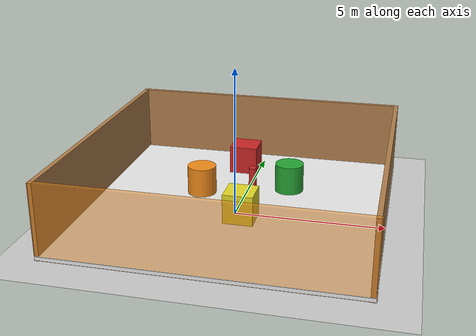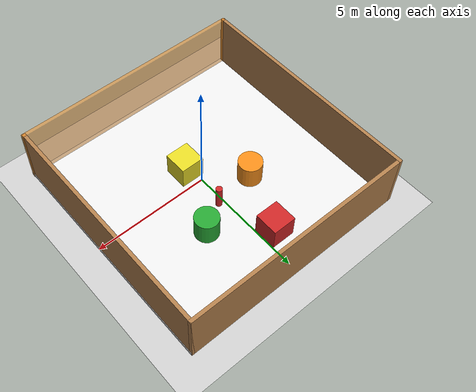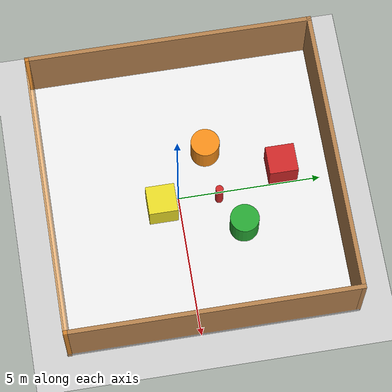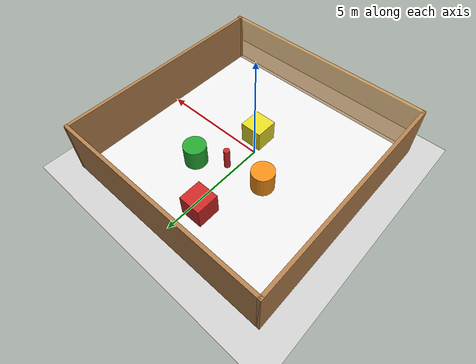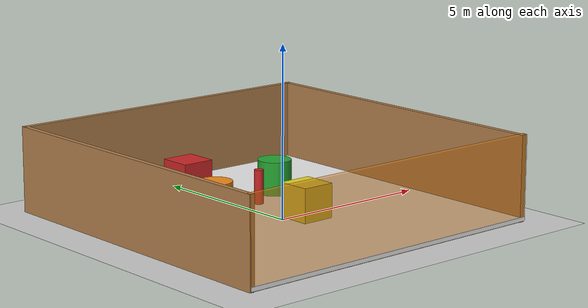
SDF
<sdf version="1.7">
 <world name="default">
  <light name="sun" type="directional">
   <pose>0 0 10 0 -0 0</pose>
   <diffuse>0.8 0.8 0.8 1</diffuse>
   <specular>0.2 0.2 0.2 1</specular>
   <attenuation>
    <range>1000</range>
    <constant>0.9</constant>
    <linear>0.01</linear>
    <quadratic>0.001</quadratic>
   </attenuation>
   <direction>-0.5 0.1 -0.9</direction>
   <spot><inner_angle>0</inner_angle><outer_angle>0</outer_angle><falloff>0</falloff></spot>
  </light>
  <model name="ground_plane">
   <static>1</static>
   <link name="link">
    <collision name="collision">
     <geometry><plane><normal>0 0 1</normal><size>100 100</size></plane></geometry>
     <surface>
      <contact><collide_bitmask>65535</collide_bitmask></contact>
      <friction><ode><mu>100</mu><mu2>50</mu2></ode></friction>
     </surface>
    </collision>
    <visual name="visual">
     <cast_shadows>0</cast_shadows>
     <geometry><plane><normal>0 0 1</normal><size>100 100</size></plane></geometry>
     <material>
      <script><uri>file://media/materials/scripts/gazebo.material</uri><name>Gazebo/Grey</name></script>
     </material>
    </visual>
   </link>
  </model>
  <gravity>0 0 -9.8</gravity>
  <magnetic_field>6e-06 2.3e-05 -4.2e-05</magnetic_field>
  <atmosphere type="adiabatic"/>
  <physics type="ode">
   <max_step_size>0.001</max_step_size>
   <real_time_factor>1</real_time_factor>
   <real_time_update_rate>1000</real_time_update_rate>
  </physics>
  <scene><ambient>0.4 0.4 0.4 1</ambient><background>0.7 0.7 0.7 1</background><shadows>1</shadows></scene>
  <spherical_coordinates>
   <surface_model>EARTH_WGS84</surface_model>
   <latitude_deg>0</latitude_deg>
   <longitude_deg>0</longitude_deg>
   <elevation>0</elevation>
   <heading_deg>0</heading_deg>
  </spherical_coordinates>
  <model name="delimiter_transparent">
   <model name="delimiter">
    <link name="Wall_11">
     <pose>0 4.925 0 0 -0 0</pose>
     <visual name="Wall_11_Visual">
      <pose>0 0 1.25 0 -0 0</pose>
      <geometry><box><size>10 0.15 2.5</size></box></geometry>
      <material>
       <script><uri>file://media/materials/scripts/gazebo.material</uri><name>Gazebo/Wood</name></script>
       <ambient>1 1 1 1</ambient>
       <shader type="pixel"/>
       <emissive>0 0 0 1</emissive>
      </material>
      <meta><layer>0</layer></meta>
     </visual>
     <collision name="Wall_11_Collision">
      <pose>0 0 1.25 0 -0 0</pose>
      <geometry><box><size>10 0.15 2.5</size></box></geometry>
      <surface>
       <friction>
        <ode><mu>1</mu><mu2>1</mu2><fdir1>0 0 0</fdir1><slip1>0</slip1><slip2>0</slip2></ode>
        <torsional>
         <coefficient>1</coefficient>
         <patch_radius>0</patch_radius>
         <surface_radius>0</surface_radius>
         <use_patch_radius>1</use_patch_radius>
         <ode><slip>0</slip></ode>
        </torsional>
       </friction>
       <bounce><restitution_coefficient>0</restitution_coefficient><threshold>1e+06</threshold></bounce>
       <contact>
        <collide_without_contact>0</collide_without_contact>
        <collide_without_contact_bitmask>1</collide_without_contact_bitmask>
        <collide_bitmask>1</collide_bitmask>
        <ode>
         <soft_cfm>0</soft_cfm>
         <soft_erp>0.2</soft_erp>
         <kp>1e+13</kp>
         <kd>1</kd>
         <max_vel>0.01</max_vel>
         <min_depth>0</min_depth>
        </ode>
        <bullet>
         <split_impulse>1</split_impulse>
         <split_impulse_penetration_threshold>-0.01</split_impulse_penetration_threshold>
         <soft_cfm>0</soft_cfm>
         <soft_erp>0.2</soft_erp>
         <kp>1e+13</kp>
         <kd>1</kd>
        </bullet>
       </contact>
      </surface>
     </collision>
    </link>
    <link name="Wall_6">
     <pose>-4.925 0 0 0 -0 1.5708</pose>
     <visual name="Wall_6_Visual">
      <pose>0 0 1.25 0 -0 0</pose>
      <geometry><box><size>10 0.15 2.5</size></box></geometry>
      <material>
       <script><uri>file://media/materials/scripts/gazebo.material</uri><name>Gazebo/Wood</name></script>
       <ambient>1 1 1 1</ambient>
       <shader type="pixel"/>
       <emissive>0 0 0 1</emissive>
      </material>
      <meta><layer>0</layer></meta>
     </visual>
     <collision name="Wall_6_Collision">
      <pose>0 0 1.25 0 -0 0</pose>
      <geometry><box><size>10 0.15 2.5</size></box></geometry>
      <surface>
       <friction>
        <ode><mu>1</mu><mu2>1</mu2><fdir1>0 0 0</fdir1><slip1>0</slip1><slip2>0</slip2></ode>
        <torsional>
         <coefficient>1</coefficient>
         <patch_radius>0</patch_radius>
         <surface_radius>0</surface_radius>
         <use_patch_radius>1</use_patch_radius>
         <ode><slip>0</slip></ode>
        </torsional>
       </friction>
       <bounce><restitution_coefficient>0</restitution_coefficient><threshold>1e+06</threshold></bounce>
       <contact>
        <collide_without_contact>0</collide_without_contact>
        <collide_without_contact_bitmask>1</collide_without_contact_bitmask>
        <collide_bitmask>1</collide_bitmask>
        <ode>
         <soft_cfm>0</soft_cfm>
         <soft_erp>0.2</soft_erp>
         <kp>1e+13</kp>
         <kd>1</kd>
         <max_vel>0.01</max_vel>
         <min_depth>0</min_depth>
        </ode>
        <bullet>
         <split_impulse>1</split_impulse>
         <split_impulse_penetration_threshold>-0.01</split_impulse_penetration_threshold>
         <soft_cfm>0</soft_cfm>
         <soft_erp>0.2</soft_erp>
         <kp>1e+13</kp>
         <kd>1</kd>
        </bullet>
       </contact>
      </surface>
     </collision>
    </link>
    <link name="Wall_9">
     <pose>4.925 0 0 0 -0 1.5708</pose>
     <visual name="Wall_9_Visual">
      <pose>0 0 1.25 0 -0 0</pose>
      <geometry><box><size>10 0.15 2.5</size></box></geometry>
      <material>
       <script><uri>file://media/materials/scripts/gazebo.material</uri><name>Gazebo/Wood</name></script>
       <ambient>1 1 1 1</ambient>
       <shader type="pixel"/>
       <emissive>0 0 0 1</emissive>
      </material>
      <meta><layer>0</layer></meta>
     </visual>
     <collision name="Wall_9_Collision">
      <pose>0 0 1.25 0 -0 0</pose>
      <geometry><box><size>10 0.15 2.5</size></box></geometry>
      <surface>
       <friction>
        <ode><mu>1</mu><mu2>1</mu2><fdir1>0 0 0</fdir1><slip1>0</slip1><slip2>0</slip2></ode>
        <torsional>
         <coefficient>1</coefficient>
         <patch_radius>0</patch_radius>
         <surface_radius>0</surface_radius>
         <use_patch_radius>1</use_patch_radius>
         <ode><slip>0</slip></ode>
        </torsional>
       </friction>
       <bounce><restitution_coefficient>0</restitution_coefficient><threshold>1e+06</threshold></bounce>
       <contact>
        <collide_without_contact>0</collide_without_contact>
        <collide_without_contact_bitmask>1</collide_without_contact_bitmask>
        <collide_bitmask>1</collide_bitmask>
        <ode>
         <soft_cfm>0</soft_cfm>
         <soft_erp>0.2</soft_erp>
         <kp>1e+13</kp>
         <kd>1</kd>
         <max_vel>0.01</max_vel>
         <min_depth>0</min_depth>
        </ode>
        <bullet>
         <split_impulse>1</split_impulse>
         <split_impulse_penetration_threshold>-0.01</split_impulse_penetration_threshold>
         <soft_cfm>0</soft_cfm>
         <soft_erp>0.2</soft_erp>
         <kp>1e+13</kp>
         <kd>1</kd>
        </bullet>
       </contact>
      </surface>
     </collision>
    </link>
    <link name="link_0">
     <inertial>
      <mass>0.118338</mass>
      <inertia><ixx>0.986289</ixx><ixy>0</ixy><ixz>0</ixz><iyy>0.986289</iyy><iyz>0</iyz><izz>1.9723</izz></inertia>
     </inertial>
     <pose>0.016005 -0.024248 0.089599 0 -0 0</pose>
     <visual name="visual">
      <geometry><box><size>10 10 0.118336</size></box></geometry>
      <material>
       <script><uri>file://media/materials/scripts/gazebo.material</uri><name>Gazebo/White</name></script>
       <ambient>1 1 1 1</ambient>
       <shader type="pixel"/>
       <emissive>0 0 0 1</emissive>
      </material>
     </visual>
     <collision name="collision">
      <geometry><box><size>10 10 0.118336</size></box></geometry>
      <surface>
       <friction>
        <ode><mu>1</mu><mu2>1</mu2><fdir1>0 0 0</fdir1><slip1>0</slip1><slip2>0</slip2></ode>
        <torsional>
         <coefficient>1</coefficient>
         <patch_radius>0</patch_radius>
         <surface_radius>0</surface_radius>
         <use_patch_radius>1</use_patch_radius>
         <ode><slip>0</slip></ode>
        </torsional>
       </friction>
       <bounce><restitution_coefficient>0</restitution_coefficient><threshold>1e+06</threshold></bounce>
       <contact>
        <collide_without_contact>0</collide_without_contact>
        <collide_without_contact_bitmask>1</collide_without_contact_bitmask>
        <collide_bitmask>1</collide_bitmask>
        <ode>
         <soft_cfm>0</soft_cfm>
         <soft_erp>0.2</soft_erp>
         <kp>1e+13</kp>
         <kd>1</kd>
         <max_vel>0.01</max_vel>
         <min_depth>0</min_depth>
        </ode>
        <bullet>
         <split_impulse>1</split_impulse>
         <split_impulse_penetration_threshold>-0.01</split_impulse_penetration_threshold>
         <soft_cfm>0</soft_cfm>
         <soft_erp>0.2</soft_erp>
         <kp>1e+13</kp>
         <kd>1</kd>
        </bullet>
       </contact>
      </surface>
     </collision>
    </link>
    <joint name="link_0_JOINT_2" type="fixed">
     <parent>link_0</parent>
     <child>Wall_6</child>
     <physics>
      <ode><limit><cfm>0</cfm><erp>0.2</erp></limit><suspension><cfm>0</cfm><erp>0.2</erp></suspension></ode>
     </physics>
    </joint>
    <joint name="link_0_JOINT_3" type="fixed">
     <parent>link_0</parent>
     <child>Wall_11</child>
     <physics>
      <ode><limit><cfm>0</cfm><erp>0.2</erp></limit><suspension><cfm>0</cfm><erp>0.2</erp></suspension></ode>
     </physics>
    </joint>
    <joint name="link_0_JOINT_4" type="fixed">
     <parent>link_0</parent>
     <child>Wall_9</child>
     <physics>
      <ode><limit><cfm>0</cfm><erp>0.2</erp></limit><suspension><cfm>0</cfm><erp>0.2</erp></suspension></ode>
     </physics>
    </joint>
    <static>1</static>
    <pose>0.081139 2.3494 0 0 -0 0</pose>
   </model>
   <model name="wall">
    <link name="link_0">
     <inertial>
      <mass>1</mass>
      <inertia>
       <ixx>0.166667</ixx>
       <ixy>0</ixy>
       <ixz>0</ixz>
       <iyy>0.166667</iyy>
       <iyz>0</iyz>
       <izz>0.166667</izz>
      </inertia>
     </inertial>
     <visual name="visual">
      <geometry><box><size>10 0.15 2.5</size></box></geometry>
      <material>
       <lighting>1</lighting>
       <script>
        <uri>file://media/materials/scripts/gazebo.material</uri>
        <name>Gazebo/OrangeTransparent</name>
       </script>
       <shader type="pixel"><normal_map>__default__</normal_map></shader>
      </material>
     </visual>
     <collision name="collision">
      <geometry><box><size>10 0.15 2.5</size></box></geometry>
      <surface>
       <friction>
        <ode><mu>1</mu><mu2>1</mu2><fdir1>0 0 0</fdir1><slip1>0</slip1><slip2>0</slip2></ode>
        <torsional>
         <coefficient>1</coefficient>
         <patch_radius>0</patch_radius>
         <surface_radius>0</surface_radius>
         <use_patch_radius>1</use_patch_radius>
         <ode><slip>0</slip></ode>
        </torsional>
       </friction>
       <bounce><restitution_coefficient>0</restitution_coefficient><threshold>1e+06</threshold></bounce>
       <contact>
        <collide_without_contact>0</collide_without_contact>
        <collide_without_contact_bitmask>1</collide_without_contact_bitmask>
        <collide_bitmask>1</collide_bitmask>
        <ode>
         <soft_cfm>0</soft_cfm>
         <soft_erp>0.2</soft_erp>
         <kp>1e+13</kp>
         <kd>1</kd>
         <max_vel>0.01</max_vel>
         <min_depth>0</min_depth>
        </ode>
        <bullet>
         <split_impulse>1</split_impulse>
         <split_impulse_penetration_threshold>-0.01</split_impulse_penetration_threshold>
         <soft_cfm>0</soft_cfm>
         <soft_erp>0.2</soft_erp>
         <kp>1e+13</kp>
         <kd>1</kd>
        </bullet>
       </contact>
      </surface>
     </collision>
    </link>
    <static>1</static>
    <pose>0.11227 -2.58314 1.26203 0 -0 0</pose>
   </model>
   <joint name="link_0_JOINT_1" type="fixed">
    <parent>delimiter::link_0</parent>
    <child>delimiter::Wall_11</child>
    <physics>
     <ode><limit><cfm>0</cfm><erp>0.2</erp></limit><suspension><cfm>0</cfm><erp>0.2</erp></suspension></ode>
    </physics>
   </joint>
   <joint name="link_0_JOINT_2" type="fixed">
    <parent>delimiter::link_0</parent>
    <child>delimiter::Wall_9</child>
    <physics>
     <ode><limit><cfm>0</cfm><erp>0.2</erp></limit><suspension><cfm>0</cfm><erp>0.2</erp></suspension></ode>
    </physics>
   </joint>
   <joint name="link_0_JOINT_0" type="fixed">
    <parent>wall::link_0</parent>
    <child>delimiter::link_0</child>
    <physics>
     <ode><limit><cfm>0</cfm><erp>0.2</erp></limit><suspension><cfm>0</cfm><erp>0.2</erp></suspension></ode>
    </physics>
   </joint>
   <joint name="link_0_JOINT_0" type="fixed">
    <parent>wall::link_0</parent>
    <child>delimiter::Wall_6</child>
    <physics>
     <ode><limit><cfm>0</cfm><erp>0.2</erp></limit><suspension><cfm>0</cfm><erp>0.2</erp></suspension></ode>
    </physics>
   </joint>
   <static>0</static>
   <pose>-0.096347 -1.89297 0 0 -0 0</pose>
  </model>
  <model name="obstacle_series_straight">
   <link name="link_0">
    <inertial>
     <mass>1</mass>
     <inertia>
      <ixx>0.166667</ixx>
      <ixy>0</ixy>
      <ixz>0</ixz>
      <iyy>0.166667</iyy>
      <iyz>0</iyz>
      <izz>0.166667</izz>
     </inertia>
    </inertial>
    <pose>0.371127 -2.10804 -0 0 -0 0</pose>
    <visual name="visual">
     <geometry><box><size>1 1 1</size></box></geometry>
     <material>
      <lighting>1</lighting>
      <script><uri>file://media/materials/scripts/gazebo.material</uri><name>Gazebo/Yellow</name></script>
      <shader type="pixel"/>
     </material>
    </visual>
    <collision name="collision">
     <geometry><box><size>1 1 1</size></box></geometry>
     <surface>
      <friction>
       <ode><mu>1</mu><mu2>1</mu2><fdir1>0 0 0</fdir1><slip1>0</slip1><slip2>0</slip2></ode>
       <torsional>
        <coefficient>1</coefficient>
        <patch_radius>0</patch_radius>
        <surface_radius>0</surface_radius>
        <use_patch_radius>1</use_patch_radius>
        <ode><slip>0</slip></ode>
       </torsional>
      </friction>
      <bounce><restitution_coefficient>0</restitution_coefficient><threshold>1e+06</threshold></bounce>
      <contact>
       <collide_without_contact>0</collide_without_contact>
       <collide_without_contact_bitmask>1</collide_without_contact_bitmask>
       <collide_bitmask>1</collide_bitmask>
       <ode>
        <soft_cfm>0</soft_cfm>
        <soft_erp>0.2</soft_erp>
        <kp>1e+13</kp>
        <kd>1</kd>
        <max_vel>0.01</max_vel>
        <min_depth>0</min_depth>
       </ode>
       <bullet>
        <split_impulse>1</split_impulse>
        <split_impulse_penetration_threshold>-0.01</split_impulse_penetration_threshold>
        <soft_cfm>0</soft_cfm>
        <soft_erp>0.2</soft_erp>
        <kp>1e+13</kp>
        <kd>1</kd>
       </bullet>
      </contact>
     </surface>
    </collision>
   </link>
   <link name="link_0_0">
    <inertial>
     <mass>0.072517</mass>
     <inertia>
      <ixx>0.00637176</ixx>
      <ixy>0</ixy>
      <ixz>0</ixz>
      <iyy>0.00637176</iyy>
      <iyz>0</iyz>
      <izz>0.00065734</izz>
     </inertia>
    </inertial>
    <pose>0.331787 -0.099851 -0 0 -0 0</pose>
    <visual name="visual">
     <geometry><cylinder><radius>0.134645</radius><length>1</length></cylinder></geometry>
     <material>
      <lighting>1</lighting>
      <script><uri>file://media/materials/scripts/gazebo.material</uri><name>Gazebo/RedBright</name></script>
      <shader type="pixel"><normal_map>__default__</normal_map></shader>
      <ambient>0.87 0.26 0.07 1</ambient>
      <diffuse>0.87 0.26 0.07 1</diffuse>
      <specular>0.87 0.26 0.07 1</specular>
      <emissive>0 0 0 1</emissive>
     </material>
    </visual>
    <collision name="collision">
     <geometry><cylinder><radius>0.134645</radius><length>1</length></cylinder></geometry>
     <surface>
      <friction>
       <ode><mu>1</mu><mu2>1</mu2><fdir1>0 0 0</fdir1><slip1>0</slip1><slip2>0</slip2></ode>
       <torsional>
        <coefficient>1</coefficient>
        <patch_radius>0</patch_radius>
        <surface_radius>0</surface_radius>
        <use_patch_radius>1</use_patch_radius>
        <ode><slip>0</slip></ode>
       </torsional>
      </friction>
      <bounce><restitution_coefficient>0</restitution_coefficient><threshold>1e+06</threshold></bounce>
      <contact>
       <collide_without_contact>0</collide_without_contact>
       <collide_without_contact_bitmask>1</collide_without_contact_bitmask>
       <collide_bitmask>1</collide_bitmask>
       <ode>
        <soft_cfm>0</soft_cfm>
        <soft_erp>0.2</soft_erp>
        <kp>1e+13</kp>
        <kd>1</kd>
        <max_vel>0.01</max_vel>
        <min_depth>0</min_depth>
       </ode>
       <bullet>
        <split_impulse>1</split_impulse>
        <split_impulse_penetration_threshold>-0.01</split_impulse_penetration_threshold>
        <soft_cfm>0</soft_cfm>
        <soft_erp>0.2</soft_erp>
        <kp>1e+13</kp>
        <kd>1</kd>
       </bullet>
      </contact>
     </surface>
    </collision>
   </link>
   <link name="link_1">
    <inertial>
     <mass>1</mass>
     <inertia><ixx>0.145833</ixx><ixy>0</ixy><ixz>0</ixz><iyy>0.145833</iyy><iyz>0</iyz><izz>0.125</izz></inertia>
    </inertial>
    <pose>-1.44488 -0.304707 -0 0 -0 0</pose>
    <visual name="visual">
     <geometry><cylinder><radius>0.5</radius><length>1</length></cylinder></geometry>
     <material>
      <lighting>1</lighting>
      <script><uri>file://media/materials/scripts/gazebo.material</uri><name>Gazebo/Orange</name></script>
      <shader type="pixel"/>
     </material>
    </visual>
    <collision name="collision">
     <geometry><cylinder><radius>0.5</radius><length>1</length></cylinder></geometry>
     <surface>
      <friction>
       <ode><mu>1</mu><mu2>1</mu2><fdir1>0 0 0</fdir1><slip1>0</slip1><slip2>0</slip2></ode>
       <torsional>
        <coefficient>1</coefficient>
        <patch_radius>0</patch_radius>
        <surface_radius>0</surface_radius>
        <use_patch_radius>1</use_patch_radius>
        <ode><slip>0</slip></ode>
       </torsional>
      </friction>
      <bounce><restitution_coefficient>0</restitution_coefficient><threshold>1e+06</threshold></bounce>
      <contact>
       <collide_without_contact>0</collide_without_contact>
       <collide_without_contact_bitmask>1</collide_without_contact_bitmask>
       <collide_bitmask>1</collide_bitmask>
       <ode>
        <soft_cfm>0</soft_cfm>
        <soft_erp>0.2</soft_erp>
        <kp>1e+13</kp>
        <kd>1</kd>
        <max_vel>0.01</max_vel>
        <min_depth>0</min_depth>
       </ode>
       <bullet>
        <split_impulse>1</split_impulse>
        <split_impulse_penetration_threshold>-0.01</split_impulse_penetration_threshold>
        <soft_cfm>0</soft_cfm>
        <soft_erp>0.2</soft_erp>
        <kp>1e+13</kp>
        <kd>1</kd>
       </bullet>
      </contact>
     </surface>
    </collision>
   </link>
   <link name="link_2">
    <inertial>
     <mass>1</mass>
     <inertia>
      <ixx>0.166667</ixx>
      <ixy>0</ixy>
      <ixz>0</ixz>
      <iyy>0.166667</iyy>
      <iyz>0</iyz>
      <izz>0.166667</izz>
     </inertia>
    </inertial>
    <pose>-0.432681 2.20329 0 0 -0 0</pose>
    <visual name="visual">
     <geometry><box><size>1 1 1</size></box></geometry>
     <material>
      <lighting>1</lighting>
      <script><uri>file://media/materials/scripts/gazebo.material</uri><name>Gazebo/RedBright</name></script>
      <shader type="pixel"/>
     </material>
    </visual>
    <collision name="collision">
     <geometry><box><size>1 1 1</size></box></geometry>
     <surface>
      <friction>
       <ode><mu>1</mu><mu2>1</mu2><fdir1>0 0 0</fdir1><slip1>0</slip1><slip2>0</slip2></ode>
       <torsional>
        <coefficient>1</coefficient>
        <patch_radius>0</patch_radius>
        <surface_radius>0</surface_radius>
        <use_patch_radius>1</use_patch_radius>
        <ode><slip>0</slip></ode>
       </torsional>
      </friction>
      <bounce><restitution_coefficient>0</restitution_coefficient><threshold>1e+06</threshold></bounce>
      <contact>
       <collide_without_contact>0</collide_without_contact>
       <collide_without_contact_bitmask>1</collide_without_contact_bitmask>
       <collide_bitmask>1</collide_bitmask>
       <ode>
        <soft_cfm>0</soft_cfm>
        <soft_erp>0.2</soft_erp>
        <kp>1e+13</kp>
        <kd>1</kd>
        <max_vel>0.01</max_vel>
        <min_depth>0</min_depth>
       </ode>
       <bullet>
        <split_impulse>1</split_impulse>
        <split_impulse_penetration_threshold>-0.01</split_impulse_penetration_threshold>
        <soft_cfm>0</soft_cfm>
        <soft_erp>0.2</soft_erp>
        <kp>1e+13</kp>
        <kd>1</kd>
       </bullet>
      </contact>
     </surface>
    </collision>
   </link>
   <link name="link_5">
    <inertial>
     <mass>1</mass>
     <inertia><ixx>0.145833</ixx><ixy>0</ixy><ixz>0</ixz><iyy>0.145833</iyy><iyz>0</iyz><izz>0.125</izz></inertia>
    </inertial>
    <pose>1.50643 0.577255 0 0 -0 0</pose>
    <visual name="visual">
     <geometry><cylinder><radius>0.5</radius><length>1</length></cylinder></geometry>
     <material>
      <lighting>1</lighting>
      <script><uri>file://media/materials/scripts/gazebo.material</uri><name>Gazebo/Green</name></script>
      <shader type="pixel"/>
     </material>
    </visual>
    <collision name="collision">
     <geometry><cylinder><radius>0.5</radius><length>1</length></cylinder></geometry>
     <surface>
      <friction>
       <ode><mu>1</mu><mu2>1</mu2><fdir1>0 0 0</fdir1><slip1>0</slip1><slip2>0</slip2></ode>
       <torsional>
        <coefficient>1</coefficient>
        <patch_radius>0</patch_radius>
        <surface_radius>0</surface_radius>
        <use_patch_radius>1</use_patch_radius>
        <ode><slip>0</slip></ode>
       </torsional>
      </friction>
      <bounce><restitution_coefficient>0</restitution_coefficient><threshold>1e+06</threshold></bounce>
      <contact>
       <collide_without_contact>0</collide_without_contact>
       <collide_without_contact_bitmask>1</collide_without_contact_bitmask>
       <collide_bitmask>1</collide_bitmask>
       <ode>
        <soft_cfm>0</soft_cfm>
        <soft_erp>0.2</soft_erp>
        <kp>1e+13</kp>
        <kd>1</kd>
        <max_vel>0.01</max_vel>
        <min_depth>0</min_depth>
       </ode>
       <bullet>
        <split_impulse>1</split_impulse>
        <split_impulse_penetration_threshold>-0.01</split_impulse_penetration_threshold>
        <soft_cfm>0</soft_cfm>
        <soft_erp>0.2</soft_erp>
        <kp>1e+13</kp>
        <kd>1</kd>
       </bullet>
      </contact>
     </surface>
    </collision>
   </link>
   <static>0</static>
   <pose>-0.030787 1.48231 0.648767 0 -0 0.000439</pose>
  </model>
 </world>
</sdf>
